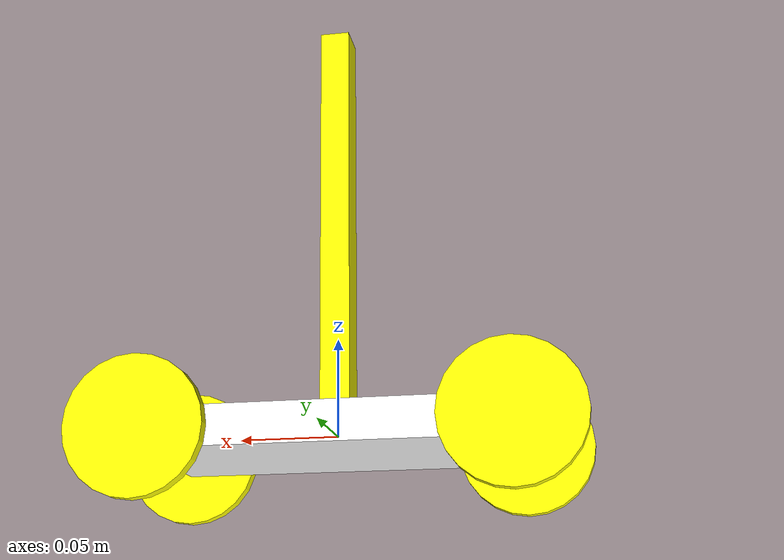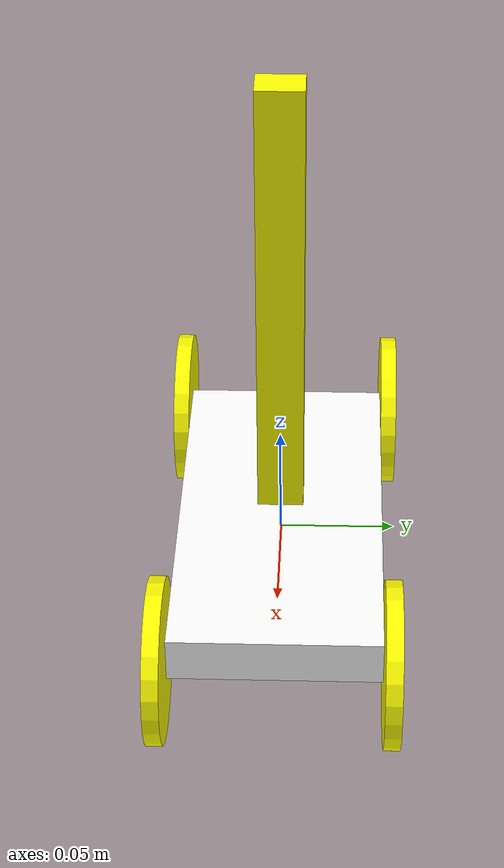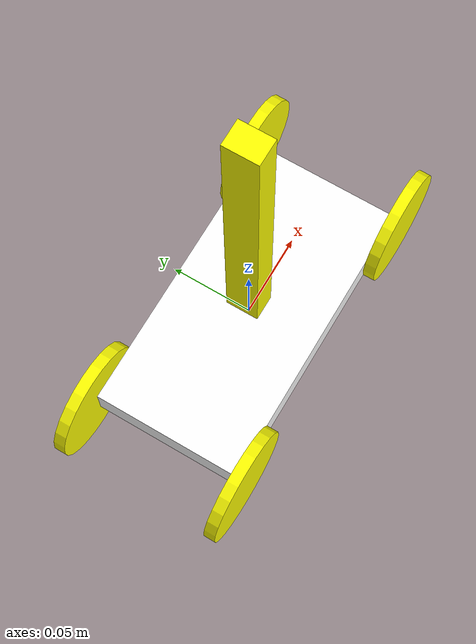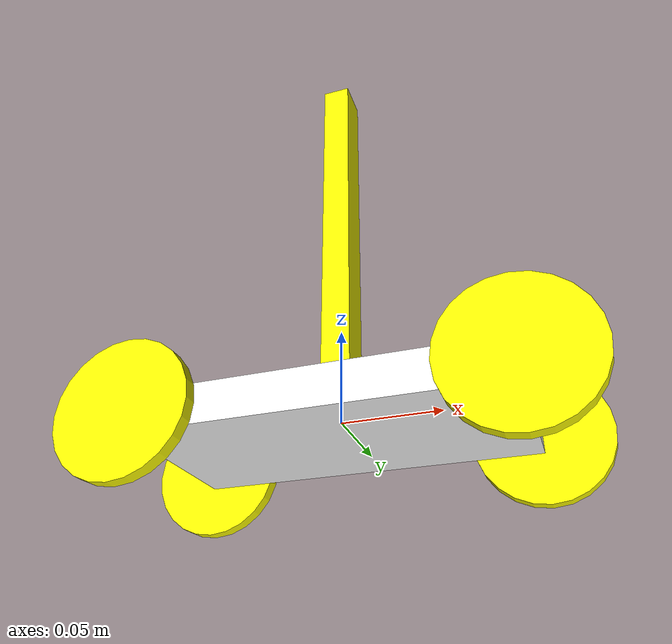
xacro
<?xml version="1.0"?>
<robot name="cartpole" xmlns:xacro="http://ros.org/wiki/xacro">
  <xacro:include filename="$(find cartpole_description)/urdf/body/body.urdf.xacro"/>
  <xacro:include filename="$(find cartpole_description)/urdf/wheel/wheel.urdf.xacro"/>
  <xacro:include filename="$(find cartpole_description)/urdf/pole/pole.urdf.xacro"/>
  <link name="base_footprint"/>

  <xacro:base parent="base_footprint">
    <origin xyz="0 0 0"/>
  </xacro:base>

  <xacro:wheel prefix="right1" parent="base_link">
    <origin xyz="0.09 -0.0485 0.0" rpy="1.57 0 0" />
    <axis xyz="0 0 -1" />
  </xacro:wheel>

  <xacro:wheel prefix="right2" parent="base_link">
    <origin xyz="-0.09 -0.0485 0.0" rpy="1.57 0 0" />
    <axis xyz="0 0 -1" />
  </xacro:wheel>

  <xacro:wheel prefix="left1" parent="base_link">
    <origin xyz="0.09 0.0485 0.0" rpy="-1.57 0 0" />
    <axis xyz="0 0 1" />
  </xacro:wheel>

  <xacro:wheel prefix="left2" parent="base_link">
    <origin xyz="-0.09 0.0485 0.0" rpy="-1.57 0 0" />
    <axis xyz="0 0 1" />
  </xacro:wheel>

  <xacro:pole prefix="pole" parent="base_link">
    <origin xyz="0.0 0.0 0.0175" rpy="0 0 0" />
    <axis xyz="0 1 0" />
  </xacro:pole>

  <!-- ===========  Transmission ============ -->
  <xacro:wheel_trans prefix="right1" interface="hardware_interface/VelocityJointInterface" />
  <xacro:wheel_trans prefix="left1" interface="hardware_interface/VelocityJointInterface" />
  <xacro:pole_trans prefix="pole" interface="hardware_interface/EffortJointInterface" />
  <!-- =============== Gazebo =============== -->
  <gazebo>
    <plugin name="gazebo_ros_control" filename="libgazebo_ros_control.so">
      <robotNamespace>/cartpole</robotNamespace>
      <robotSimType>gazebo_ros_control/DefaultRobotHWSim</robotSimType>
    </plugin>
  </gazebo>

  <xacro:base_gazebo/>
  <xacro:wheel_gazebo prefix="right1" />
  <xacro:wheel_gazebo prefix="left1" />
  <xacro:wheel_gazebo prefix="right2" />
  <xacro:wheel_gazebo prefix="left2" />
  <xacro:pole_gazebo prefix="pole" />
</robot>

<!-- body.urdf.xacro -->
<robot xmlns:xacro="http://ros.org/wiki/xacro">
  <xacro:include filename="$(find cartpole_description)/urdf/body/body.gazebo.xacro" />
  <xacro:property name="M_PI" value="3.1415926535897931" />
  <xacro:property name="velocity_scale_factor" value="1.0"/>
  <xacro:macro name="base" params="parent *joint_origin">
    <joint name="base_joint" type="fixed">
      <xacro:insert_block name="joint_origin"/>
      <parent link="${parent}"/>
      <child link="base_link"/>
    </joint>

    <link name="base_link">
      <visual>
        <geometry>
          <box size="0.18 0.09 0.02"/>
        </geometry>
        <material name="gray">
          <color rgba="1 1 1 1"/>
        </material>
      </visual>

      <collision>
        <geometry>
          <box size="0.18 0.09 0.02"/>
        </geometry>
      </collision>

      <inertial>
        <origin xyz="0 0 0"/>
        <mass value="0.15"/>
        <inertia ixx="1e-3" ixy="0" ixz="0" iyy="1e-3" iyz="0" izz="1e-3"/>
      </inertial>
    </link>
  </xacro:macro>
</robot>

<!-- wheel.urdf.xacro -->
<robot xmlns:xacro="http://ros.org/wiki/xacro">
  <xacro:include filename="$(find cartpole_description)/urdf/wheel/wheel.gazebo.xacro" />
  <xacro:include filename="$(find cartpole_description)/urdf/wheel/wheel.transmission.xacro" />
  <xacro:macro name="wheel" params="prefix parent *joint_origin *joint_axis">
    <joint name="${prefix}_wheel_joint" type="continuous">
      <xacro:insert_block name="joint_origin" />
      <xacro:insert_block name="joint_axis" />
      <parent link="${parent}" />
      <child link="${prefix}_wheel" />
    </joint>

    <link name="${prefix}_wheel">
      <visual>
        <geometry>
          <cylinder radius="0.035" length="0.007"/>
        </geometry>
        <material name="yellow">
          <color rgba="1 1 0 1"/>
        </material>
      </visual>

      <collision>
        <geometry>
          <cylinder radius="0.035" length="0.007"/>
        </geometry>
      </collision>

      <inertial>
        <origin xyz="0.0 0.0 0.0" />
        <mass value="0.05"/>
        <inertia ixx="0.0013541667" ixy="0" ixz="0" iyy="0.0013541667" iyz="0" izz="0.0025"/>
      </inertial>
    </link>
  </xacro:macro>
</robot>

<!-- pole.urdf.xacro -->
<robot xmlns:xacro="http://ros.org/wiki/xacro">
  <xacro:include filename="$(find cartpole_description)/urdf/pole/pole.gazebo.xacro" />
  <xacro:include filename="$(find cartpole_description)/urdf/pole/pole.transmission.xacro" />
  <xacro:macro name="pole" params="prefix parent *joint_origin *joint_axis">
    <joint name="${prefix}_joint" type="revolute">
      <xacro:insert_block name="joint_origin" />
      <xacro:insert_block name="joint_axis" />
      <parent link="${parent}" />
      <child link="pole" />
      <limit lower="-1.57" upper="1.57" effort="10" velocity="10" />
    </joint>

    <link name="pole">
      <visual>
        <geometry>
          <box size="0.001 0.001 0.001"/>
        </geometry>
        <origin xyz="0 0 0" rpy="0 0 0" />
        <material name="yellow">
          <color rgba="1 1 0 1"/>
        </material>
      </visual>

      <collision>
        <geometry>
          <box size="0 0 0"/>
        </geometry>
        <origin xyz="0 0 0" rpy="0 0 0" />
      </collision>

      <inertial>
        <origin xyz="0.0 0.0 0.0" />
        <mass value="0"/>
        <inertia ixx="0" ixy="0" ixz="0" iyy="0" iyz="0" izz="0"/>
      </inertial>
    </link>

    <link name="pole1">
      <visual>
        <geometry>
          <box size="0.015 0.02 0.2"/>
        </geometry>
        <origin xyz="0 0 0" rpy="0 0 0" />
        <material name="yellow">
          <color rgba="1 1 0 1"/>
        </material>
      </visual>

      <collision>
        <geometry>
          <box size="0.015 0.02 0.2"/>
        </geometry>
        <origin xyz="0 0 0" rpy="0 0 0" />
      </collision>

      <inertial>
        <origin xyz="0 0 0" />
        <mass value="0.003"/>
        <inertia ixx="0.0013541667" ixy="0" ixz="0" iyy="0.0013541667" iyz="0" izz="0.0025"/>
      </inertial>
    </link>

    <joint name="pole1_joint" type="fixed">
      <origin xyz="0 0 0.1" rpy="0 0 0" />
      <axis xyz="0 1 0" />
      <parent link="pole" />
      <child link="pole1" />
      <limit lower="-1.57" upper="1.57" effort="10" velocity="10" />
    </joint>

  </xacro:macro>
</robot>
